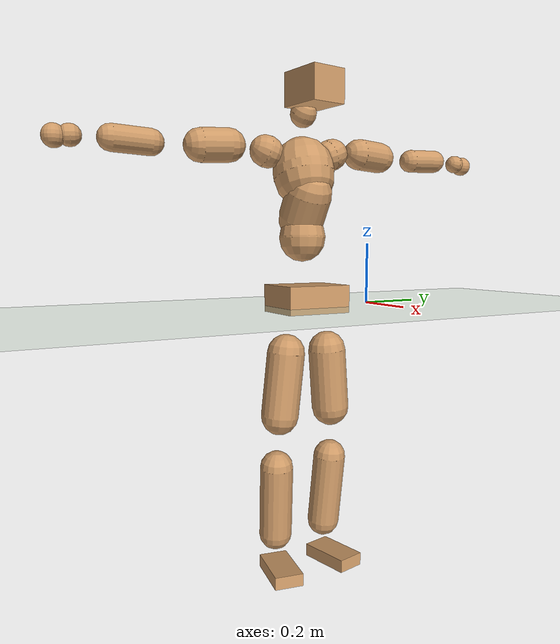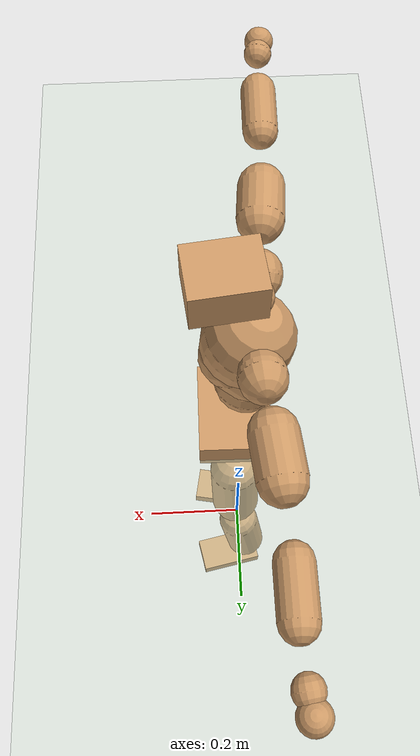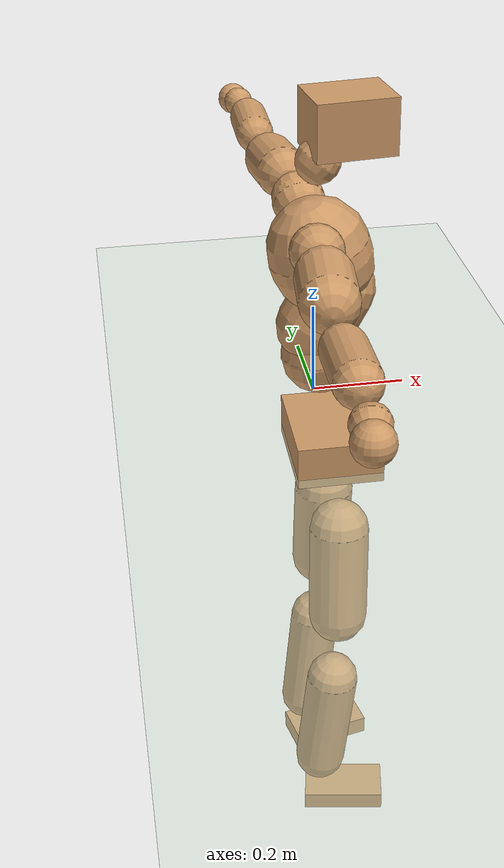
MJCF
<mujoco model="humanoid">
  <compiler coordinate="local" angle="radian"/>
  <default>
    <joint damping="0.0" armature="0.01" stiffness="0.0" limited="true"/>
    <geom conaffinity="1" condim="3" contype="7" margin="0.001" rgba="0.8 0.6 .4 1"/>
  </default>
  <asset>
    <texture type="skybox" builtin="gradient" rgb1=".4 .5 .6" rgb2="0 0 0" width="100" height="100"/>
    <texture builtin="flat" height="1278" mark="cross" markrgb="1 1 1" name="texgeom" random="0.01" rgb1="0.8 0.6 0.4" rgb2="0.8 0.6 0.4" type="cube" width="127"/>
    <texture builtin="checker" height="100" name="texplane" rgb1="0 0 0" rgb2="0.8 0.8 0.8" type="2d" width="100"/>
    <material name="MatPlane" reflectance="0.5" shininess="1" specular="1" texrepeat="60 60" texture="texplane"/>
    <material name="geom" texture="texgeom" texuniform="true"/>
  </asset>
  <worldbody>
    <light cutoff="100" diffuse="1 1 1" dir="-0 0 -1.3" directional="true" exponent="1" pos="0 0 1.3" specular=".1 .1 .1"/>
    <geom conaffinity="1" condim="3" name="floor" pos="0 0 0" rgba="0.8 0.9 0.8 1" size="100 100 .2" type="plane" material="MatPlane"/>
    <body name="Pelvis" pos="0.0004 -0.2364 0.0361">
      <freejoint name="Pelvis"/>
      <geom type="box" contype="1" conaffinity="1" density="5359.374821" pos="-0.0056 0.0001 -0.0131" size="0.0865 0.1093 0.0446" quat="1.0000 0.0000 0.0000 -0.0047" name="Pelvis"/>
      <body name="L_Hip" pos="-0.0038 0.0725 -0.0959">
        <joint name="L_Hip_x" type="hinge" pos="0 0 0" axis="1 0 0" stiffness="1600" damping="160" armature="0.02" range="-180.0000 180.0000"/>
        <joint name="L_Hip_y" type="hinge" pos="0 0 0" axis="0 1 0" stiffness="1600" damping="160" armature="0.02" range="-180.0000 180.0000"/>
        <joint name="L_Hip_z" type="hinge" pos="0 0 0" axis="0 0 1" stiffness="1600" damping="160" armature="0.02" range="-180.0000 180.0000"/>
        <geom type="capsule" contype="1" conaffinity="1" density="2040.816327" size="0.062" fromto="-0.0019 0.0080 -0.0917 -0.0061 0.0255 -0.2913" name="L_Hip"/>
        <body name="L_Knee" pos="-0.008 0.0335 -0.383">
          <joint name="L_Knee_x" type="hinge" pos="0 0 0" axis="1 0 0" stiffness="1600" damping="160" armature="0.02" range="-180.0000 180.0000"/>
          <joint name="L_Knee_y" type="hinge" pos="0 0 0" axis="0 1 0" stiffness="1600" damping="160" armature="0.02" range="-180.0000 180.0000"/>
          <joint name="L_Knee_z" type="hinge" pos="0 0 0" axis="0 0 1" stiffness="1600" damping="160" armature="0.02" range="-180.0000 180.0000"/>
          <geom type="capsule" contype="1" conaffinity="1" density="1234.567901" size="0.0544" fromto="-0.0092 -0.0025 -0.0838 -0.0354 -0.0097 -0.3231" name="L_Knee"/>
          <body name="L_Ankle" pos="-0.0446 -0.0123 -0.4069">
            <joint name="L_Ankle_x" type="hinge" pos="0 0 0" axis="1 0 0" stiffness="1600" damping="160" armature="0.02" range="-180.0000 180.0000"/>
            <joint name="L_Ankle_y" type="hinge" pos="0 0 0" axis="0 1 0" stiffness="1600" damping="160" armature="0.02" range="-180.0000 180.0000"/>
            <joint name="L_Ankle_z" type="hinge" pos="0 0 0" axis="0 0 1" stiffness="1600" damping="160" armature="0.02" range="-180.0000 180.0000"/>
            <geom type="box" contype="1" conaffinity="1" density="1000" pos="0.0607 0.0124 -0.0292" size="0.0864 0.0467 0.0212" quat="0.9950 0.0000 0.0000 0.1003" name="L_Ankle"/>
            <body name="L_Toe" pos="0.1213 0.0247 -0.0584">
              <joint name="L_Toe_x" type="hinge" pos="0 0 0" axis="1 0 0" stiffness="1000" damping="100" armature="0.02" range="-180.0000 180.0000"/>
              <joint name="L_Toe_y" type="hinge" pos="0 0 0" axis="0 1 0" stiffness="1000" damping="100" armature="0.02" range="-180.0000 180.0000"/>
              <joint name="L_Toe_z" type="hinge" pos="0 0 0" axis="0 0 1" stiffness="1000" damping="100" armature="0.02" range="-180.0000 180.0000"/>
              <geom type="box" contype="1" conaffinity="1" density="8740992.843121" pos="0.0000 0.0000 0.0291" size="0.0009 0.0023 0.0011" quat="0.9943 0.0000 0.0000 0.1064" name="L_Toe"/>
            </body>
          </body>
        </body>
      </body>
      <body name="R_Hip" pos="-0.0009 -0.069 -0.0955">
        <joint name="R_Hip_x" type="hinge" pos="0 0 0" axis="1 0 0" stiffness="1600" damping="160" armature="0.02" range="-180.0000 180.0000"/>
        <joint name="R_Hip_y" type="hinge" pos="0 0 0" axis="0 1 0" stiffness="1600" damping="160" armature="0.02" range="-180.0000 180.0000"/>
        <joint name="R_Hip_z" type="hinge" pos="0 0 0" axis="0 0 1" stiffness="1600" damping="160" armature="0.02" range="-180.0000 180.0000"/>
        <geom type="capsule" contype="1" conaffinity="1" density="2040.816327" size="0.0612" fromto="-0.0024 -0.0090 -0.0907 -0.0078 -0.0298 -0.3001" name="R_Hip"/>
        <body name="R_Knee" pos="-0.0101 -0.0388 -0.3908">
          <joint name="R_Knee_x" type="hinge" pos="0 0 0" axis="1 0 0" stiffness="1600" damping="160" armature="0.02" range="-180.0000 180.0000"/>
          <joint name="R_Knee_y" type="hinge" pos="0 0 0" axis="0 1 0" stiffness="1600" damping="160" armature="0.02" range="-180.0000 180.0000"/>
          <joint name="R_Knee_z" type="hinge" pos="0 0 0" axis="0 0 1" stiffness="1600" damping="160" armature="0.02" range="-180.0000 180.0000"/>
          <geom type="capsule" contype="1" conaffinity="1" density="1234.567901" size="0.0547" fromto="-0.0090 0.0030 -0.0841 -0.0348 0.0117 -0.3239" name="R_Knee"/>
          <body name="R_Ankle" pos="-0.0439 0.0147 -0.408">
            <joint name="R_Ankle_x" type="hinge" pos="0 0 0" axis="1 0 0" stiffness="1600" damping="160" armature="0.02" range="-180.0000 180.0000"/>
            <joint name="R_Ankle_y" type="hinge" pos="0 0 0" axis="0 1 0" stiffness="1600" damping="160" armature="0.02" range="-180.0000 180.0000"/>
            <joint name="R_Ankle_z" type="hinge" pos="0 0 0" axis="0 0 1" stiffness="1600" damping="160" armature="0.02" range="-180.0000 180.0000"/>
            <geom type="box" contype="1" conaffinity="1" density="1000.000053" pos="0.0623 -0.0117 -0.0242" size="0.0878 0.0474 0.0207" quat="0.9957 0.0000 0.0000 -0.0923" name="R_Ankle"/>
            <body name="R_Toe" pos="0.1246 -0.0233 -0.0484">
              <joint name="R_Toe_x" type="hinge" pos="0 0 0" axis="1 0 0" stiffness="1000" damping="100" armature="0.02" range="-180.0000 180.0000"/>
              <joint name="R_Toe_y" type="hinge" pos="0 0 0" axis="0 1 0" stiffness="1000" damping="100" armature="0.02" range="-180.0000 180.0000"/>
              <joint name="R_Toe_z" type="hinge" pos="0 0 0" axis="0 0 1" stiffness="1000" damping="100" armature="0.02" range="-180.0000 180.0000"/>
              <geom type="box" contype="1" conaffinity="1" density="8437688.559127" pos="0.0000 0.0000 0.0270" size="0.0009 0.0024 0.0012" quat="0.9965 0.0000 0.0000 -0.0833" name="R_Toe"/>
            </body>
          </body>
        </body>
      </body>
      <body name="Torso" pos="-0.0289 -0.0032 0.1125">
        <joint name="Torso_x" type="hinge" pos="0 0 0" axis="1 0 0" stiffness="2000" damping="200" armature="0.02" range="-180.0000 180.0000"/>
        <joint name="Torso_y" type="hinge" pos="0 0 0" axis="0 1 0" stiffness="2000" damping="200" armature="0.02" range="-180.0000 180.0000"/>
        <joint name="Torso_z" type="hinge" pos="0 0 0" axis="0 0 1" stiffness="2000" damping="200" armature="0.02" range="-180.0000 180.0000"/>
        <geom type="capsule" contype="1" conaffinity="1" density="2040.816327" size="0.0752" fromto="-0.0028 0.0021 0.0751 -0.0025 0.0020 0.0685" name="Torso"/>
        <body name="Spine" pos="-0.0053 0.0041 0.1436">
          <joint name="Spine_x" type="hinge" pos="0 0 0" axis="1 0 0" stiffness="2000" damping="200" armature="0.02" range="-180.0000 180.0000"/>
          <joint name="Spine_y" type="hinge" pos="0 0 0" axis="0 1 0" stiffness="2000" damping="200" armature="0.02" range="-180.0000 180.0000"/>
          <joint name="Spine_z" type="hinge" pos="0 0 0" axis="0 0 1" stiffness="2000" damping="200" armature="0.02" range="-180.0000 180.0000"/>
          <geom type="capsule" contype="1" conaffinity="1" density="2040.816327" size="0.075" fromto="0.0369 0.0018 0.0652 -0.0063 -0.0003 -0.0111" name="Spine"/>
          <body name="Chest" pos="0.0306 0.0015 0.0542">
            <joint name="Chest_x" type="hinge" pos="0 0 0" axis="1 0 0" stiffness="2000" damping="200" armature="0.02" range="-180.0000 180.0000"/>
            <joint name="Chest_y" type="hinge" pos="0 0 0" axis="0 1 0" stiffness="2000" damping="200" armature="0.02" range="-180.0000 180.0000"/>
            <joint name="Chest_z" type="hinge" pos="0 0 0" axis="0 0 1" stiffness="2000" damping="200" armature="0.02" range="-180.0000 180.0000"/>
            <geom type="capsule" contype="1" conaffinity="1" density="2040.816327" size="0.0986" fromto="-0.0293 -0.0007 0.0941 -0.0208 -0.0005 0.0667" name="Chest"/>
            <body name="Neck" pos="-0.0566 -0.0015 0.2294">
              <joint name="Neck_x" type="hinge" pos="0 0 0" axis="1 0 0" stiffness="1000" damping="100" armature="0.02" range="-180.0000 180.0000"/>
              <joint name="Neck_y" type="hinge" pos="0 0 0" axis="0 1 0" stiffness="1000" damping="100" armature="0.02" range="-180.0000 180.0000"/>
              <joint name="Neck_z" type="hinge" pos="0 0 0" axis="0 0 1" stiffness="1000" damping="100" armature="0.02" range="-180.0000 180.0000"/>
              <geom type="capsule" contype="1" conaffinity="1" density="1000" size="0.0424" fromto="0.0265 0.0022 0.0330 0.0277 0.0023 0.0345" name="Neck"/>
              <body name="Head" pos="0.0542 0.0045 0.0675">
                <joint name="Head_x" type="hinge" pos="0 0 0" axis="1 0 0" stiffness="1000" damping="100" armature="0.02" range="-180.0000 180.0000"/>
                <joint name="Head_y" type="hinge" pos="0 0 0" axis="0 1 0" stiffness="1000" damping="100" armature="0.02" range="-180.0000 180.0000"/>
                <joint name="Head_z" type="hinge" pos="0 0 0" axis="0 0 1" stiffness="1000" damping="100" armature="0.02" range="-180.0000 180.0000"/>
                <geom type="box" contype="1" conaffinity="1" density="2249.99992" pos="0.0281 0.0033 0.0347" size="0.0763 0.0596 0.0531" quat="0.9983 0.0000 0.0000 0.0580" name="Head"/>
              </body>
            </body>
            <body name="L_Thorax" pos="-0.0437 0.0741 0.1277">
              <joint name="L_Thorax_x" type="hinge" pos="0 0 0" axis="1 0 0" stiffness="1000" damping="100" armature="0.02" range="-180.0000 180.0000"/>
              <joint name="L_Thorax_y" type="hinge" pos="0 0 0" axis="0 1 0" stiffness="1000" damping="100" armature="0.02" range="-180.0000 180.0000"/>
              <joint name="L_Thorax_z" type="hinge" pos="0 0 0" axis="0 0 1" stiffness="1000" damping="100" armature="0.02" range="-180.0000 180.0000"/>
              <geom type="capsule" contype="1" conaffinity="1" density="1000" size="0.0511" fromto="-0.0029 0.0477 0.0182 -0.0021 0.0343 0.0131" name="L_Thorax"/>
              <body name="L_Shoulder" pos="-0.005 0.082 0.0312">
                <joint name="L_Shoulder_x" type="hinge" pos="0 0 0" axis="1 0 0" stiffness="1000" damping="100" armature="0.02" range="-720.0000 720.0000"/>
                <joint name="L_Shoulder_y" type="hinge" pos="0 0 0" axis="0 1 0" stiffness="1000" damping="100" armature="0.02" range="-720.0000 720.0000"/>
                <joint name="L_Shoulder_z" type="hinge" pos="0 0 0" axis="0 0 1" stiffness="1000" damping="100" armature="0.02" range="-720.0000 720.0000"/>
                <geom type="capsule" contype="1" conaffinity="1" density="1000" size="0.0512" fromto="-0.0090 0.0806 -0.0037 -0.0195 0.1753 -0.0080" name="L_Shoulder"/>
                <body name="L_Elbow" pos="-0.0285 0.2559 -0.0117">
                  <joint name="L_Elbow_x" type="hinge" pos="0 0 0" axis="1 0 0" stiffness="1000" damping="100" armature="0.02" range="-720.0000 720.0000"/>
                  <joint name="L_Elbow_y" type="hinge" pos="0 0 0" axis="0 1 0" stiffness="1000" damping="100" armature="0.02" range="-720.0000 720.0000"/>
                  <joint name="L_Elbow_z" type="hinge" pos="0 0 0" axis="0 0 1" stiffness="1000" damping="100" armature="0.02" range="-720.0000 720.0000"/>
                  <geom type="capsule" contype="1" conaffinity="1" density="1000" size="0.0397" fromto="0.0002 0.0697 0.0026 0.0004 0.1762 0.0067" name="L_Elbow"/>
                  <body name="L_Wrist" pos="0.0005 0.2459 0.0093">
                    <joint name="L_Wrist_x" type="hinge" pos="0 0 0" axis="1 0 0" stiffness="600" damping="60" armature="0.02" range="-180.0000 180.0000"/>
                    <joint name="L_Wrist_y" type="hinge" pos="0 0 0" axis="0 1 0" stiffness="600" damping="60" armature="0.02" range="-180.0000 180.0000"/>
                    <joint name="L_Wrist_z" type="hinge" pos="0 0 0" axis="0 0 1" stiffness="600" damping="60" armature="0.02" range="-180.0000 180.0000"/>
                    <geom type="capsule" contype="1" conaffinity="1" density="1000" size="0.0314" fromto="-0.0068 0.0405 -0.0049 -0.0071 0.0425 -0.0051" name="L_Wrist"/>
                    <body name="L_Hand" pos="-0.0139 0.083 -0.01">
                      <joint name="L_Hand_x" type="hinge" pos="0 0 0" axis="1 0 0" stiffness="600" damping="60" armature="0.02" range="-180.0000 180.0000"/>
                      <joint name="L_Hand_y" type="hinge" pos="0 0 0" axis="0 1 0" stiffness="600" damping="60" armature="0.02" range="-180.0000 180.0000"/>
                      <joint name="L_Hand_z" type="hinge" pos="0 0 0" axis="0 0 1" stiffness="600" damping="60" armature="0.02" range="-180.0000 180.0000"/>
                      <geom type="sphere" contype="1" conaffinity="1" density="1000" size="0.0335" pos="0.0000 0.0000 0.0000" name="L_Hand"/>
                    </body>
                  </body>
                </body>
              </body>
            </body>
            <body name="R_Thorax" pos="-0.0499 -0.076 0.1254">
              <joint name="R_Thorax_x" type="hinge" pos="0 0 0" axis="1 0 0" stiffness="1000" damping="100" armature="0.02" range="-180.0000 180.0000"/>
              <joint name="R_Thorax_y" type="hinge" pos="0 0 0" axis="0 1 0" stiffness="1000" damping="100" armature="0.02" range="-180.0000 180.0000"/>
              <joint name="R_Thorax_z" type="hinge" pos="0 0 0" axis="0 0 1" stiffness="1000" damping="100" armature="0.02" range="-180.0000 180.0000"/>
              <geom type="capsule" contype="1" conaffinity="1" density="1000" size="0.0505" fromto="-0.0040 -0.0473 0.0173 -0.0034 -0.0400 0.0146" name="R_Thorax"/>
              <body name="R_Shoulder" pos="-0.0074 -0.0873 0.0319">
                <joint name="R_Shoulder_x" type="hinge" pos="0 0 0" axis="1 0 0" stiffness="1000" damping="100" armature="0.02" range="-720.0000 720.0000"/>
                <joint name="R_Shoulder_y" type="hinge" pos="0 0 0" axis="0 1 0" stiffness="1000" damping="100" armature="0.02" range="-720.0000 720.0000"/>
                <joint name="R_Shoulder_z" type="hinge" pos="0 0 0" axis="0 0 1" stiffness="1000" damping="100" armature="0.02" range="-720.0000 720.0000"/>
                <geom type="capsule" contype="1" conaffinity="1" density="1000" size="0.0525" fromto="-0.0072 -0.0821 -0.0044 -0.0150 -0.1716 -0.0092" name="R_Shoulder"/>
                <body name="R_Elbow" pos="-0.0221 -0.2537 -0.0136">
                  <joint name="R_Elbow_x" type="hinge" pos="0 0 0" axis="1 0 0" stiffness="1000" damping="100" armature="0.02" range="-720.0000 720.0000"/>
                  <joint name="R_Elbow_y" type="hinge" pos="0 0 0" axis="0 1 0" stiffness="1000" damping="100" armature="0.02" range="-720.0000 720.0000"/>
                  <joint name="R_Elbow_z" type="hinge" pos="0 0 0" axis="0 0 1" stiffness="1000" damping="100" armature="0.02" range="-720.0000 720.0000"/>
                  <geom type="capsule" contype="1" conaffinity="1" density="1000" size="0.0399" fromto="-0.0010 -0.0698 0.0027 -0.0028 -0.1852 0.0072" name="R_Elbow"/>
                  <body name="R_Wrist" pos="-0.0038 -0.2551 0.0099">
                    <joint name="R_Wrist_x" type="hinge" pos="0 0 0" axis="1 0 0" stiffness="600" damping="60" armature="0.02" range="-180.0000 180.0000"/>
                    <joint name="R_Wrist_y" type="hinge" pos="0 0 0" axis="0 1 0" stiffness="600" damping="60" armature="0.02" range="-180.0000 180.0000"/>
                    <joint name="R_Wrist_z" type="hinge" pos="0 0 0" axis="0 0 1" stiffness="600" damping="60" armature="0.02" range="-180.0000 180.0000"/>
                    <geom type="capsule" contype="1" conaffinity="1" density="1000" size="0.0322" fromto="-0.0053 -0.0411 -0.0036 -0.0056 -0.0430 -0.0037" name="R_Wrist"/>
                    <body name="R_Hand" pos="-0.0109 -0.0841 -0.0073">
                      <joint name="R_Hand_x" type="hinge" pos="0 0 0" axis="1 0 0" stiffness="600" damping="60" armature="0.02" range="-180.0000 180.0000"/>
                      <joint name="R_Hand_y" type="hinge" pos="0 0 0" axis="0 1 0" stiffness="600" damping="60" armature="0.02" range="-180.0000 180.0000"/>
                      <joint name="R_Hand_z" type="hinge" pos="0 0 0" axis="0 0 1" stiffness="600" damping="60" armature="0.02" range="-180.0000 180.0000"/>
                      <geom type="sphere" contype="1" conaffinity="1" density="1000" size="0.0338" pos="0.0000 0.0000 0.0000" name="R_Hand"/>
                    </body>
                  </body>
                </body>
              </body>
            </body>
          </body>
        </body>
      </body>
    </body>
  </worldbody>
  <actuator>
    <motor name="L_Hip_x" joint="L_Hip_x" gear="500"/>
    <motor name="L_Hip_y" joint="L_Hip_y" gear="500"/>
    <motor name="L_Hip_z" joint="L_Hip_z" gear="500"/>
    <motor name="L_Knee_x" joint="L_Knee_x" gear="500"/>
    <motor name="L_Knee_y" joint="L_Knee_y" gear="500"/>
    <motor name="L_Knee_z" joint="L_Knee_z" gear="500"/>
    <motor name="L_Ankle_x" joint="L_Ankle_x" gear="500"/>
    <motor name="L_Ankle_y" joint="L_Ankle_y" gear="500"/>
    <motor name="L_Ankle_z" joint="L_Ankle_z" gear="500"/>
    <motor name="L_Toe_x" joint="L_Toe_x" gear="500"/>
    <motor name="L_Toe_y" joint="L_Toe_y" gear="500"/>
    <motor name="L_Toe_z" joint="L_Toe_z" gear="500"/>
    <motor name="R_Hip_x" joint="R_Hip_x" gear="500"/>
    <motor name="R_Hip_y" joint="R_Hip_y" gear="500"/>
    <motor name="R_Hip_z" joint="R_Hip_z" gear="500"/>
    <motor name="R_Knee_x" joint="R_Knee_x" gear="500"/>
    <motor name="R_Knee_y" joint="R_Knee_y" gear="500"/>
    <motor name="R_Knee_z" joint="R_Knee_z" gear="500"/>
    <motor name="R_Ankle_x" joint="R_Ankle_x" gear="500"/>
    <motor name="R_Ankle_y" joint="R_Ankle_y" gear="500"/>
    <motor name="R_Ankle_z" joint="R_Ankle_z" gear="500"/>
    <motor name="R_Toe_x" joint="R_Toe_x" gear="500"/>
    <motor name="R_Toe_y" joint="R_Toe_y" gear="500"/>
    <motor name="R_Toe_z" joint="R_Toe_z" gear="500"/>
    <motor name="Torso_x" joint="Torso_x" gear="500"/>
    <motor name="Torso_y" joint="Torso_y" gear="500"/>
    <motor name="Torso_z" joint="Torso_z" gear="500"/>
    <motor name="Spine_x" joint="Spine_x" gear="500"/>
    <motor name="Spine_y" joint="Spine_y" gear="500"/>
    <motor name="Spine_z" joint="Spine_z" gear="500"/>
    <motor name="Chest_x" joint="Chest_x" gear="500"/>
    <motor name="Chest_y" joint="Chest_y" gear="500"/>
    <motor name="Chest_z" joint="Chest_z" gear="500"/>
    <motor name="Neck_x" joint="Neck_x" gear="500"/>
    <motor name="Neck_y" joint="Neck_y" gear="500"/>
    <motor name="Neck_z" joint="Neck_z" gear="500"/>
    <motor name="Head_x" joint="Head_x" gear="500"/>
    <motor name="Head_y" joint="Head_y" gear="500"/>
    <motor name="Head_z" joint="Head_z" gear="500"/>
    <motor name="L_Thorax_x" joint="L_Thorax_x" gear="500"/>
    <motor name="L_Thorax_y" joint="L_Thorax_y" gear="500"/>
    <motor name="L_Thorax_z" joint="L_Thorax_z" gear="500"/>
    <motor name="L_Shoulder_x" joint="L_Shoulder_x" gear="500"/>
    <motor name="L_Shoulder_y" joint="L_Shoulder_y" gear="500"/>
    <motor name="L_Shoulder_z" joint="L_Shoulder_z" gear="500"/>
    <motor name="L_Elbow_x" joint="L_Elbow_x" gear="500"/>
    <motor name="L_Elbow_y" joint="L_Elbow_y" gear="500"/>
    <motor name="L_Elbow_z" joint="L_Elbow_z" gear="500"/>
    <motor name="L_Wrist_x" joint="L_Wrist_x" gear="500"/>
    <motor name="L_Wrist_y" joint="L_Wrist_y" gear="500"/>
    <motor name="L_Wrist_z" joint="L_Wrist_z" gear="500"/>
    <motor name="L_Hand_x" joint="L_Hand_x" gear="500"/>
    <motor name="L_Hand_y" joint="L_Hand_y" gear="500"/>
    <motor name="L_Hand_z" joint="L_Hand_z" gear="500"/>
    <motor name="R_Thorax_x" joint="R_Thorax_x" gear="500"/>
    <motor name="R_Thorax_y" joint="R_Thorax_y" gear="500"/>
    <motor name="R_Thorax_z" joint="R_Thorax_z" gear="500"/>
    <motor name="R_Shoulder_x" joint="R_Shoulder_x" gear="500"/>
    <motor name="R_Shoulder_y" joint="R_Shoulder_y" gear="500"/>
    <motor name="R_Shoulder_z" joint="R_Shoulder_z" gear="500"/>
    <motor name="R_Elbow_x" joint="R_Elbow_x" gear="500"/>
    <motor name="R_Elbow_y" joint="R_Elbow_y" gear="500"/>
    <motor name="R_Elbow_z" joint="R_Elbow_z" gear="500"/>
    <motor name="R_Wrist_x" joint="R_Wrist_x" gear="500"/>
    <motor name="R_Wrist_y" joint="R_Wrist_y" gear="500"/>
    <motor name="R_Wrist_z" joint="R_Wrist_z" gear="500"/>
    <motor name="R_Hand_x" joint="R_Hand_x" gear="500"/>
    <motor name="R_Hand_y" joint="R_Hand_y" gear="500"/>
    <motor name="R_Hand_z" joint="R_Hand_z" gear="500"/>
  </actuator>
  <contact>
    <exclude body1="Torso" body2="Chest"/>
    <exclude body1="Head" body2="Chest"/>
    <exclude body1="R_Knee" body2="R_Toe"/>
    <exclude body1="R_Knee" body2="L_Ankle"/>
    <exclude body1="R_Knee" body2="L_Toe"/>
    <exclude body1="L_Knee" body2="L_Toe"/>
    <exclude body1="L_Knee" body2="R_Ankle"/>
    <exclude body1="L_Knee" body2="R_Toe"/>
    <exclude body1="L_Shoulder" body2="Chest"/>
    <exclude body1="R_Shoulder" body2="Chest"/>
  </contact>
  <sensor/>
  <size njmax="700" nconmax="700"/>
</mujoco>
